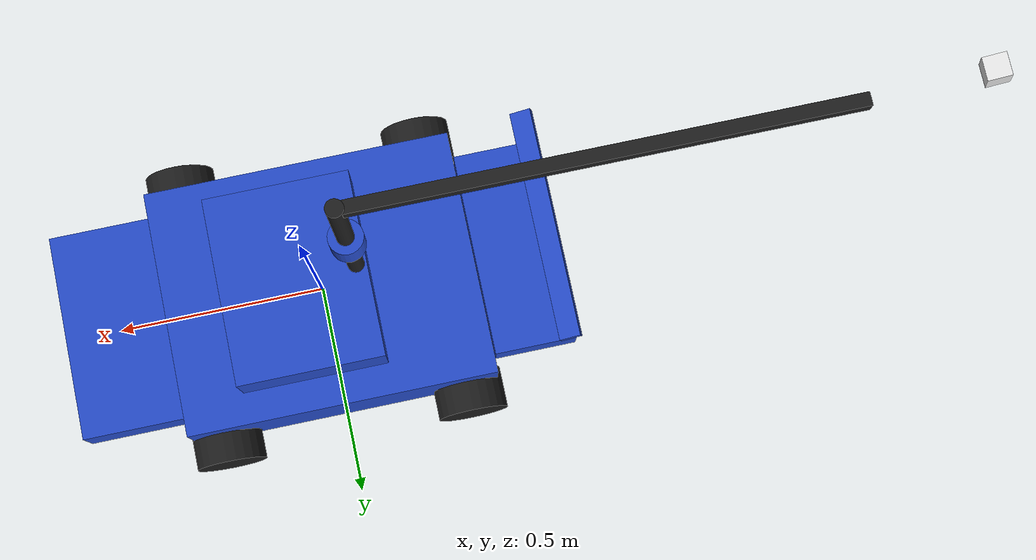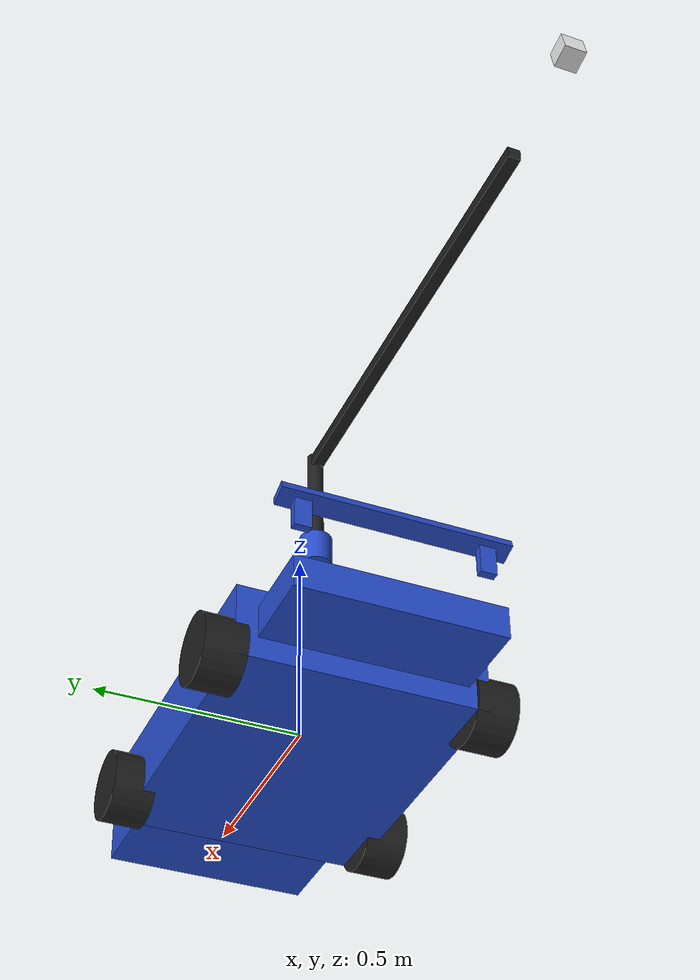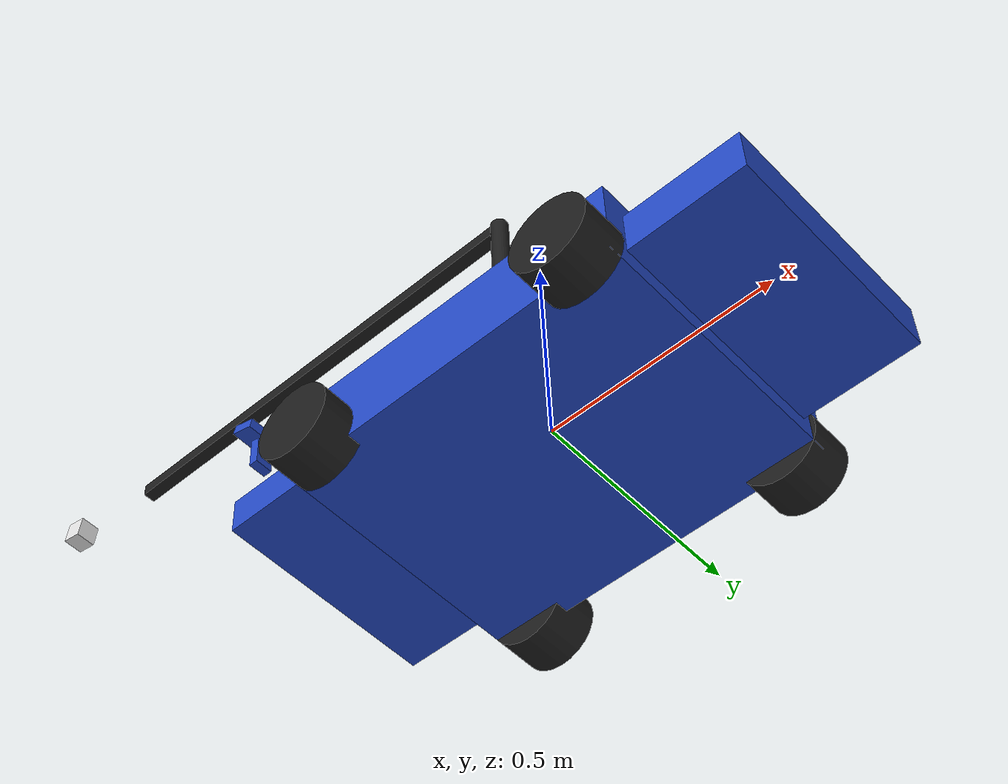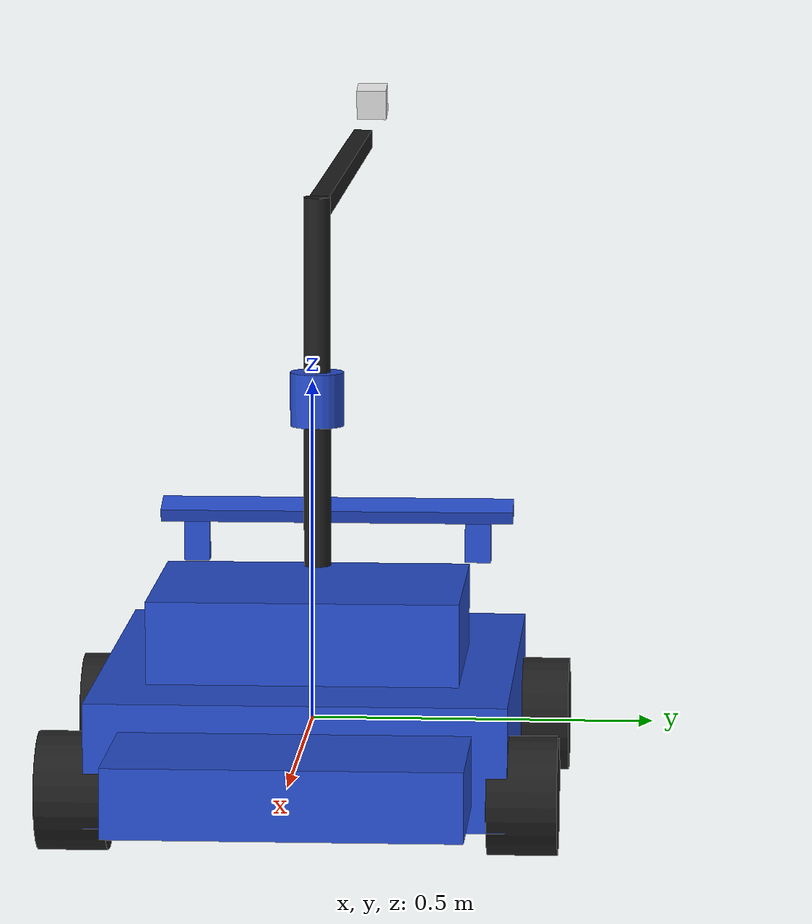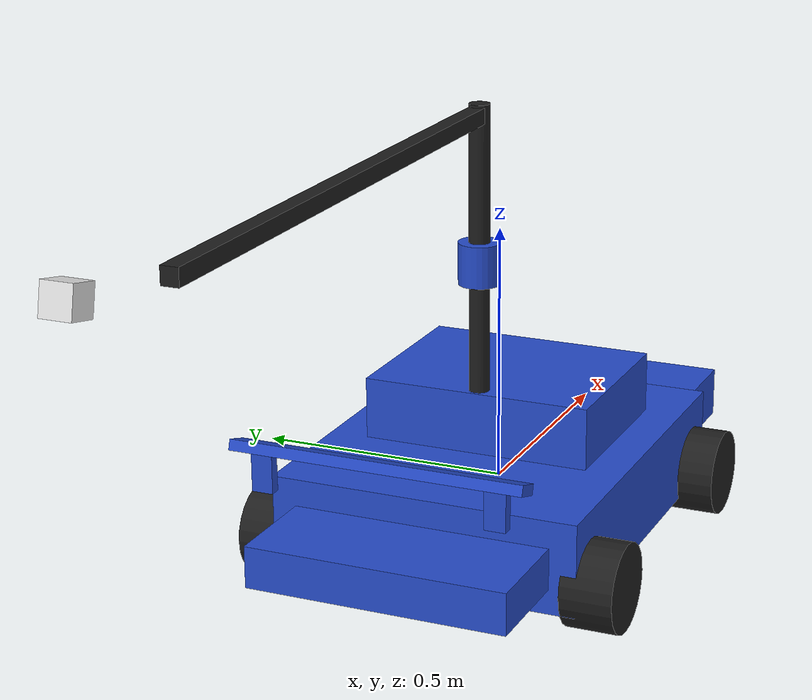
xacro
<?xml version='1.0'?>

<robot name="bocbot" xmlns:xacro="http://www.ros.org/wiki/xacro">

  <!-- Arguments pour personnalisation -->
  <xacro:arg name="robot_name" default="bocbot"/>
  <xacro:arg name="color" default="Blue"/>

  <xacro:property name="robot_name" value="$(arg robot_name)"/>
  <xacro:property name="robot_color" value="$(arg color)"/>

  <xacro:include filename="bocbot.gazebo" />

  <link name="robot_footprint"></link>

  <joint name="robot_footprint_joint" type="fixed">
    <origin xyz="0 0 0" rpy="0 0 0" />
    <parent link="robot_footprint"/>
    <child link="chassis" />
    <axis xyz="0 1 0" rpy="0 0 0"/>
  </joint>

  <!-- CAR BODY - forme de voiture PLUS HAUTE et PLUS COURTE -->
  <link name='chassis'>
    <pose>0 0 0.11 0 0 0</pose>

    <inertial>
      <mass value="100.0"/>
      <origin xyz="0.0 0 -0.02" rpy=" 0 0 0"/>
      <inertia ixx="1.5" ixy="0" ixz="0" iyy="1.5" iyz="0" izz="2.0" />
    </inertial>

    <collision name='collision'>
      <origin xyz="0 0 0" rpy=" 0 0 0"/>
      <geometry>
        <box size="0.75 0.6 0.18"/>
      </geometry>
    </collision>

    <visual name='chassis_visual'>
      <origin xyz="0 0 0" rpy=" 0 0 0"/>
      <geometry>
        <box size="0.75 0.6 0.18"/>
      </geometry>
    </visual>

  </link>

  <!-- CAPOT (hood) avant de la voiture -->
  <link name="hood">
    <inertial>
      <mass value="2.0"/>
      <origin xyz="0 0 0" rpy=" 0 0 0"/>
      <inertia ixx="0.01" ixy="0" ixz="0" iyy="0.01" iyz="0" izz="0.01" />
    </inertial>

    <collision name='hood_collision'>
      <origin xyz="0 0 0" rpy=" 0 0 0"/>
      <geometry>
        <box size="0.25 0.5 0.10"/>
      </geometry>
    </collision>

    <visual name='hood_visual'>
      <origin xyz="0 0 0" rpy=" 0 0 0"/>
      <geometry>
        <box size="0.25 0.5 0.10"/>
      </geometry>
    </visual>
  </link>

  <!-- COFFER (trunk) arriere de la voiture -->
  <link name="trunk">
    <inertial>
      <mass value="2.0"/>
      <origin xyz="0 0 0" rpy=" 0 0 0"/>
      <inertia ixx="0.01" ixy="0" ixz="0" iyy="0.01" iyz="0" izz="0.01" />
    </inertial>

    <collision name='trunk_collision'>
      <origin xyz="0 0 0" rpy=" 0 0 0"/>
      <geometry>
        <box size="0.2 0.5 0.08"/>
      </geometry>
    </collision>

    <visual name='trunk_visual'>
      <origin xyz="0 0 0" rpy=" 0 0 0"/>
      <geometry>
        <box size="0.2 0.5 0.08"/>
      </geometry>
    </visual>
  </link>

  <!-- TOIT (roof) de la voiture PLUS HAUT -->
  <link name="roof">
    <inertial>
      <mass value="1.5"/>
      <origin xyz="0 0 0" rpy=" 0 0 0"/>
      <inertia ixx="0.01" ixy="0" ixz="0" iyy="0.01" iyz="0" izz="0.01" />
    </inertial>

    <collision name='roof_collision'>
      <origin xyz="0 0 0" rpy=" 0 0 0"/>
      <geometry>
        <box size="0.35 0.45 0.12"/>
      </geometry>
    </collision>

    <visual name='roof_visual'>
      <origin xyz="0 0 0" rpy=" 0 0 0"/>
      <geometry>
        <box size="0.35 0.45 0.12"/>
      </geometry>
    </visual>
  </link>

  <!-- AILERON (spoiler) arriere style F1 -->
  <link name="spoiler">
    <inertial>
      <mass value="0.5"/>
      <origin xyz="0 0 0" rpy=" 0 0 0"/>
      <inertia ixx="0.001" ixy="0" ixz="0" iyy="0.001" iyz="0" izz="0.001" />
    </inertial>

    <!-- Aileron horizontal (wing) -->
    <collision name='spoiler_wing_collision'>
      <origin xyz="0 0 0" rpy=" 0 0.3 0"/>
      <geometry>
        <box size="0.05 0.55 0.02"/>
      </geometry>
    </collision>

    <visual name='spoiler_wing_visual'>
      <origin xyz="0 0 0" rpy=" 0 0.3 0"/>
      <geometry>
        <box size="0.05 0.55 0.02"/>
      </geometry>
    </visual>

    <!-- Supports verticaux de l'aileron -->
    <collision name='spoiler_left_support_collision'>
      <origin xyz="0 -0.22 -0.04" rpy=" 0 0 0"/>
      <geometry>
        <box size="0.02 0.04 0.08"/>
      </geometry>
    </collision>

    <visual name='spoiler_left_support_visual'>
      <origin xyz="0 -0.22 -0.04" rpy=" 0 0 0"/>
      <geometry>
        <box size="0.02 0.04 0.08"/>
      </geometry>
    </visual>

    <collision name='spoiler_right_support_collision'>
      <origin xyz="0 0.22 -0.04" rpy=" 0 0 0"/>
      <geometry>
        <box size="0.02 0.04 0.08"/>
      </geometry>
    </collision>

    <visual name='spoiler_right_support_visual'>
      <origin xyz="0 0.22 -0.04" rpy=" 0 0 0"/>
      <geometry>
        <box size="0.02 0.04 0.08"/>
      </geometry>
    </visual>
  </link>

  <!-- ANTENNE pour caméra sur le toit -->
  <link name="antenna">
    <inertial>
      <mass value="0.35"/>
      <origin xyz="-0.25 0 0.30" rpy="0 0 0"/>
      <inertia ixx="0.003" ixy="0" ixz="0" iyy="0.003" iyz="0" izz="0.0003" />
    </inertial>

    <visual name="antenna_visual">
      <origin xyz="0 0 0.30" rpy="0 0 0"/>
      <geometry>
        <cylinder length="0.6" radius="0.02"/>
      </geometry>
    </visual>

    <collision name="antenna_collision">
      <origin xyz="0 0 0.30" rpy="0 0 0"/>
      <geometry>
        <cylinder length="0.6" radius="0.02"/>
      </geometry>
    </collision>

    <visual name="camera_boom_visual">
      <origin xyz="-0.55 0 0.58" rpy="0 0 0"/>
      <geometry>
        <box size="1.10 0.03 0.03"/>
      </geometry>
    </visual>

    <collision name="camera_boom_collision">
      <origin xyz="-0.55 0 0.58" rpy="0 0 0"/>
      <geometry>
        <box size="1.10 0.03 0.03"/>
      </geometry>
    </collision>
  </link>

  <!-- ROUES style voiture (legerement plus grandes) -->
  <link name="front_left_wheel">
    <inertial>
      <mass value="5.0"/>
      <origin xyz="0.0 0 0" rpy=" 0 1.5707 1.5707"/>
      <inertia ixx="0.05" ixy="0" ixz="0" iyy="0.05" iyz="0" izz="0.05" />
    </inertial>

    <visual>
      <origin xyz="0.0 0 0" rpy=" 0 1.5707 1.5707"/>
      <geometry>
        <cylinder length="0.10" radius="0.085"/>
      </geometry>
    </visual>

    <collision>
      <origin xyz="0.0 0 0" rpy=" 0 1.5707 1.5707"/>
      <geometry>
        <cylinder length="0.10" radius="0.085"/>
      </geometry>
      <surface>
        <friction>
          <ode>
            <mu>8.0</mu>
            <mu2>8.0</mu2>
          </ode>
        </friction>
      </surface>
    </collision>
  </link>

  <link name="back_left_wheel">
    <inertial>
      <mass value="5.0"/>
      <origin xyz="0.0 0 0" rpy=" 0 1.5707 1.5707"/>
      <inertia ixx="0.05" ixy="0" ixz="0" iyy="0.05" iyz="0" izz="0.05" />
    </inertial>

    <visual>
      <origin xyz="0.0 0 0" rpy=" 0 1.5707 1.5707"/>
      <geometry>
        <cylinder length="0.10" radius="0.085"/>
      </geometry>
    </visual>

    <collision>
      <origin xyz="0.0 0 0" rpy=" 0 1.5707 1.5707"/>
      <geometry>
        <cylinder length="0.10" radius="0.085"/>
      </geometry>
      <surface>
        <friction>
          <ode>
            <mu>8.0</mu>
            <mu2>8.0</mu2>
          </ode>
        </friction>
      </surface>
    </collision>
  </link>

  <link name="front_right_wheel">
    <inertial>
      <mass value="5.0"/>
      <origin xyz="0.0 0 0" rpy=" 0 1.5707 1.5707"/>
      <inertia ixx="0.05" ixy="0" ixz="0" iyy="0.05" iyz="0" izz="0.05" />
    </inertial>

    <visual>
      <origin xyz="0.0 0 0" rpy=" 0 1.5707 1.5707"/>
      <geometry>
        <cylinder length="0.10" radius="0.085"/>
      </geometry>
    </visual>

    <collision>
      <origin xyz="0.0 0 0" rpy=" 0 1.5707 1.5707"/>
      <geometry>
        <cylinder length="0.10" radius="0.085"/>
      </geometry>
      <surface>
        <friction>
          <ode>
            <mu>8.0</mu>
            <mu2>8.0</mu2>
          </ode>
        </friction>
      </surface>
    </collision>
  </link>

  <link name="back_right_wheel">
    <inertial>
      <mass value="5.0"/>
      <origin xyz="0.0 0 0" rpy=" 0 1.5707 1.5707"/>
      <inertia ixx="0.05" ixy="0" ixz="0" iyy="0.05" iyz="0" izz="0.05" />
    </inertial>

    <visual>
      <origin xyz="0.0 0 0" rpy=" 0 1.5707 1.5707"/>
      <geometry>
        <cylinder length="0.10" radius="0.085"/>
      </geometry>
    </visual>

    <collision>
      <origin xyz="0.0 0 0" rpy=" 0 1.5707 1.5707"/>
      <geometry>
        <cylinder length="0.10" radius="0.085"/>
      </geometry>
      <surface>
        <friction>
          <ode>
            <mu>8.0</mu>
            <mu2>8.0</mu2>
          </ode>
        </friction>
      </surface>
    </collision>
  </link>

  <link name="camera">
    <inertial>
      <mass value="0.1"/>
      <origin xyz="0.05 0.05 0.05" rpy=" 0 0 0"/>
      <inertia ixx="1e-6" ixy="0" ixz="0" iyy="1e-6" iyz="0" izz="1e-6" />
    </inertial>

    <visual name="camera_visual">
      <origin xyz="0 0 0" rpy="0 0 0" />
      <geometry>
        <box size="0.05 0.05 0.05"/>
      </geometry>
    </visual>

    <collision name="camera_colision">
      <origin xyz="0 0 0" rpy="0 0 0" />
      <geometry>
        <box size="0.05 0.05 0.05"/>
      </geometry>
    </collision>
  </link>

  <link name="hokuyo">
    <inertial>
      <mass value="1e-5"/>
      <origin xyz="0 0 0" rpy=" 0 0 0"/>
      <inertia ixx="1e-6" ixy="0" ixz="0" iyy="1e-6" iyz="0" izz="1e-6" />
    </inertial>

    <visual name="hokuyo_visual">
      <origin xyz="0 0 0" rpy="0 0 0" />
      <geometry>
        <cylinder length="0.08" radius="0.04"/>
      </geometry>
    </visual>

    <collision name="hokuyo_colision">
      <origin xyz="0 0 0" rpy="0 0 0" />
      <geometry>
        <cylinder length="0.08" radius="0.04"/>
      </geometry>
    </collision>
  </link>

  <!-- CAMERAS 360° - 4 mini-cameras sur l'antenne, INVISIBLES -->
  <link name="cam360_front">
    <inertial>
      <mass value="0.01"/>
      <origin xyz="0 0 0" rpy="0 0 0"/>
      <inertia ixx="1e-7" ixy="0" ixz="0" iyy="1e-7" iyz="0" izz="1e-7" />
    </inertial>
    <!-- PAS DE VISUAL - cameras invisibles dans Gazebo -->
  </link>

  <link name="cam360_right">
    <inertial>
      <mass value="0.01"/>
      <origin xyz="0 0 0" rpy="0 0 0"/>
      <inertia ixx="1e-7" ixy="0" ixz="0" iyy="1e-7" iyz="0" izz="1e-7" />
    </inertial>
  </link>

  <link name="cam360_back">
    <inertial>
      <mass value="0.01"/>
      <origin xyz="0 0 0" rpy="0 0 0"/>
      <inertia ixx="1e-7" ixy="0" ixz="0" iyy="1e-7" iyz="0" izz="1e-7" />
    </inertial>
  </link>

  <link name="cam360_left">
    <inertial>
      <mass value="0.01"/>
      <origin xyz="0 0 0" rpy="0 0 0"/>
      <inertia ixx="1e-7" ixy="0" ixz="0" iyy="1e-7" iyz="0" izz="1e-7" />
    </inertial>
  </link>

  <!-- JOINTS pour les roues - positions larges style voiture -->
  <joint type="continuous" name="front_left_wheel_joint">
    <origin xyz="0.30 0.32 -0.05" rpy="0 0 0"/>
    <child link="front_left_wheel"/>
    <parent link="chassis"/>
    <axis xyz="0 1 0" rpy="0 0 0"/>
    <limit effort="20000" velocity="1000"/>
    <dynamics damping="1.0" friction="1.0"/>
  </joint>

  <joint type="continuous" name="front_right_wheel_joint">
    <origin xyz="0.30 -0.32 -0.05" rpy="0 0 0"/>
    <child link="front_right_wheel"/>
    <parent link="chassis"/>
    <axis xyz="0 1 0" rpy="0 0 0"/>
    <limit effort="20000" velocity="1000"/>
    <dynamics damping="1.0" friction="1.0"/>
  </joint>

  <joint type="continuous" name="back_left_wheel_joint">
    <origin xyz="-0.30 0.32 -0.05" rpy="0 0 0"/>
    <child link="back_left_wheel"/>
    <parent link="chassis"/>
    <axis xyz="0 1 0" rpy="0 0 0"/>
    <limit effort="20000" velocity="1000"/>
    <dynamics damping="1.0" friction="1.0"/>
  </joint>

  <joint type="continuous" name="back_right_wheel_joint">
    <origin xyz="-0.30 -0.32 -0.05" rpy="0 0 0"/>
    <child link="back_right_wheel"/>
    <parent link="chassis"/>
    <axis xyz="0 1 0" rpy="0 0 0"/>
    <limit effort="20000" velocity="1000"/>
    <dynamics damping="1.0" friction="1.0"/>
  </joint>

  <!-- JOINTS pour capot, coffre, toit et aileron -->
  <joint type="fixed" name="hood_joint">
    <origin xyz="0.50 0 0" rpy="0 0 0"/>
    <child link="hood"/>
    <parent link="chassis"/>
    <axis xyz="0 1 0" rpy="0 0 0"/>
  </joint>

  <joint type="fixed" name="trunk_joint">
    <origin xyz="-0.48 0 0" rpy="0 0 0"/>
    <child link="trunk"/>
    <parent link="chassis"/>
    <axis xyz="0 1 0" rpy="0 0 0"/>
  </joint>

  <joint type="fixed" name="roof_joint">
    <origin xyz="0.05 0 0.15" rpy="0 0 0"/>
    <child link="roof"/>
    <parent link="chassis"/>
    <axis xyz="0 1 0" rpy="0 0 0"/>
  </joint>

  <joint type="fixed" name="spoiler_joint">
    <origin xyz="-0.55 0 0.22" rpy="0 0 0"/>
    <child link="spoiler"/>
    <parent link="chassis"/>
    <axis xyz="0 1 0" rpy="0 0 0"/>
  </joint>

  <!-- ANTENNE - Sur le toit pour la caméra -->
  <joint type="fixed" name="antenna_joint">
    <origin xyz="-0.10 0 0.16" rpy="0 0 0"/>
    <child link="antenna"/>
    <parent link="chassis"/>
    <axis xyz="0 1 0" rpy="0 0 0"/>
  </joint>

  <!-- CAMÉRA - Sur perche arriere pour vue 3e personne -->
  <joint type="fixed" name="camera_joint">
    <origin xyz="-1.35 0 0.62" rpy="0 0.20 0"/>
    <child link="camera"/>
    <parent link="antenna"/>
    <axis xyz="0 1 0" rpy="0 0 0"/>
  </joint>

  <!-- Joints cameras 360 - sur l'antenne a z=0.30 (meme hauteur que le LIDAR) -->
  <joint type="fixed" name="cam360_front_joint">
    <origin xyz="0.02 0 0.30" rpy="0 0 0"/>
    <child link="cam360_front"/>
    <parent link="antenna"/>
  </joint>

  <joint type="fixed" name="cam360_right_joint">
    <origin xyz="0 -0.02 0.30" rpy="0 0 -1.5708"/>
    <child link="cam360_right"/>
    <parent link="antenna"/>
  </joint>

  <joint type="fixed" name="cam360_back_joint">
    <origin xyz="-0.02 0 0.30" rpy="0 0 3.1416"/>
    <child link="cam360_back"/>
    <parent link="antenna"/>
  </joint>

  <joint type="fixed" name="cam360_left_joint">
    <origin xyz="0 0.02 0.30" rpy="0 0 1.5708"/>
    <child link="cam360_left"/>
    <parent link="antenna"/>
  </joint>

  <!-- LIDAR 360° - Au sommet de l'antenne pour vision 360° dégagée -->
  <joint type="fixed" name="hokuyo_joint">
    <origin xyz="0 0 0.30" rpy="0 0 0"/>
    <child link="hokuyo"/>
    <parent link="antenna"/>
    <axis xyz="0 0 1" rpy="0 0 0"/>
  </joint>

  <!-- MATERIAUX GAZEBO - Couleurs selon l'equipe -->
  <xacro:if value="${robot_color == 'Orange'}">
    <!-- Robot ORANGE -->
    <gazebo reference="chassis">
      <material>Gazebo/Orange</material>
    </gazebo>
    <gazebo reference="hood">
      <material>Gazebo/Orange</material>
    </gazebo>
    <gazebo reference="trunk">
      <material>Gazebo/Orange</material>
    </gazebo>
    <gazebo reference="roof">
      <material>Gazebo/Orange</material>
    </gazebo>
  </xacro:if>

  <xacro:if value="${robot_color == 'Blue'}">
    <!-- Robot BLEU -->
    <gazebo reference="chassis">
      <material>Gazebo/Blue</material>
    </gazebo>
    <gazebo reference="hood">
      <material>Gazebo/Blue</material>
    </gazebo>
    <gazebo reference="trunk">
      <material>Gazebo/Blue</material>
    </gazebo>
    <gazebo reference="roof">
      <material>Gazebo/Blue</material>
    </gazebo>
  </xacro:if>

  <!-- Spoiler: couleur de l'equipe -->
  <gazebo reference="spoiler">
    <material>Gazebo/${robot_color}</material>
  </gazebo>

  <gazebo reference="antenna">
    <material>Gazebo/Black</material>
  </gazebo>

  <gazebo reference="front_left_wheel">
    <material>Gazebo/Black</material>
  </gazebo>

  <gazebo reference="front_right_wheel">
    <material>Gazebo/Black</material>
  </gazebo>

  <gazebo reference="back_left_wheel">
    <material>Gazebo/Black</material>
  </gazebo>

  <gazebo reference="back_right_wheel">
    <material>Gazebo/Black</material>
  </gazebo>

  <gazebo reference="camera">
    <material>Gazebo/White</material>
  </gazebo>

  <gazebo reference="hokuyo">
    <material>Gazebo/${robot_color}</material>
  </gazebo>

  <gazebo reference="cam360_front">
    <material>Gazebo/Red</material>
  </gazebo>

  <gazebo reference="cam360_right">
    <material>Gazebo/Red</material>
  </gazebo>

  <gazebo reference="cam360_back">
    <material>Gazebo/Red</material>
  </gazebo>

  <gazebo reference="cam360_left">
    <material>Gazebo/Red</material>
  </gazebo>

</robot>
